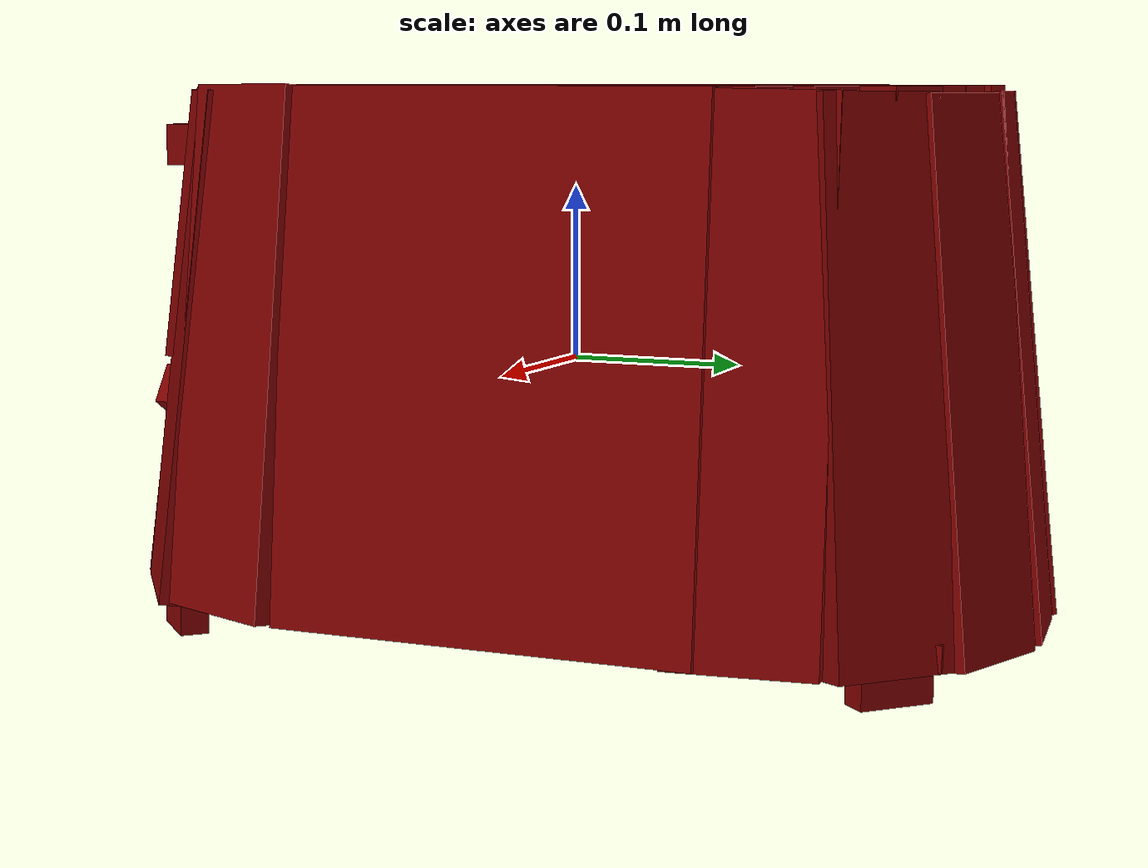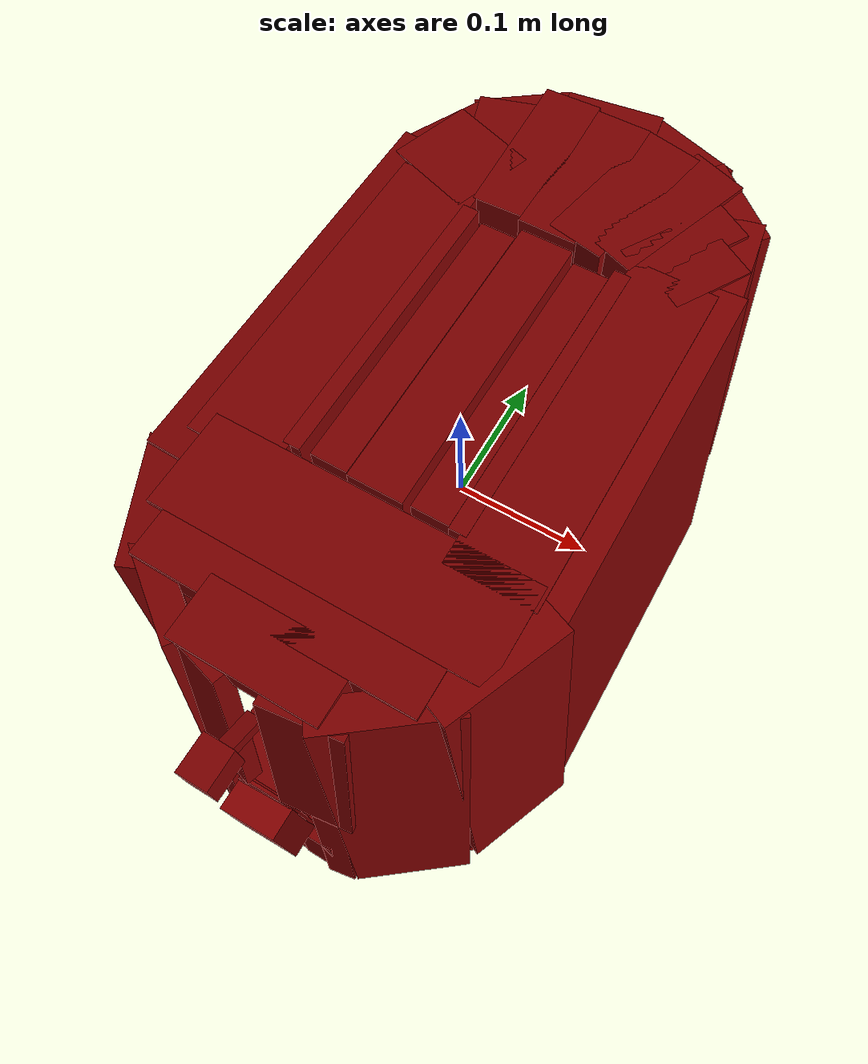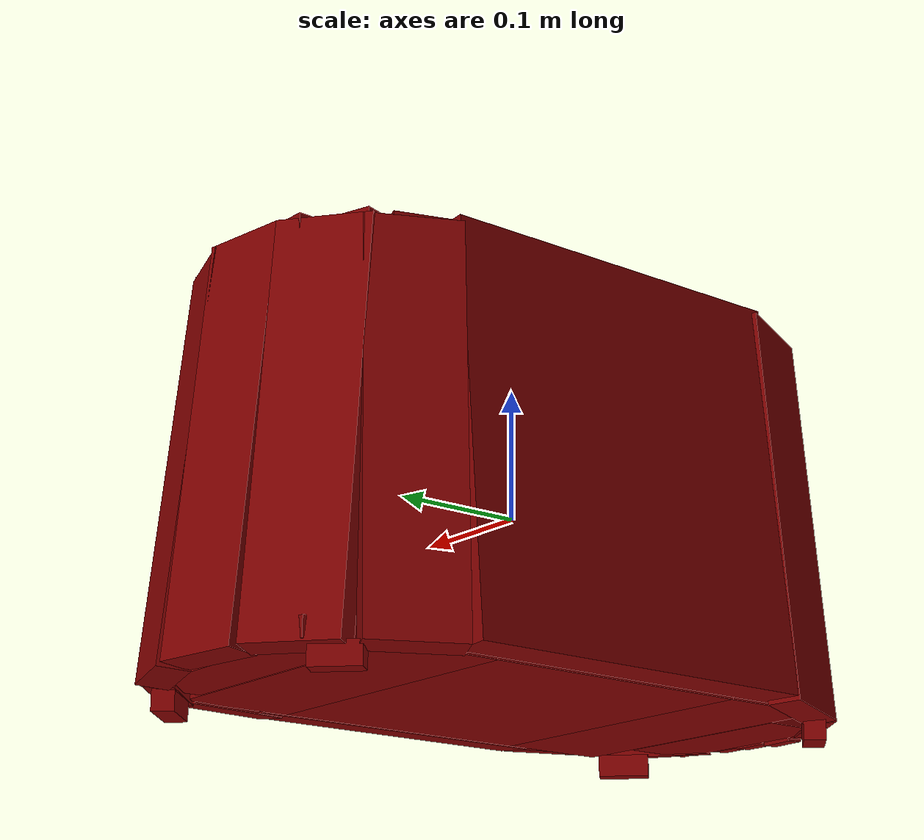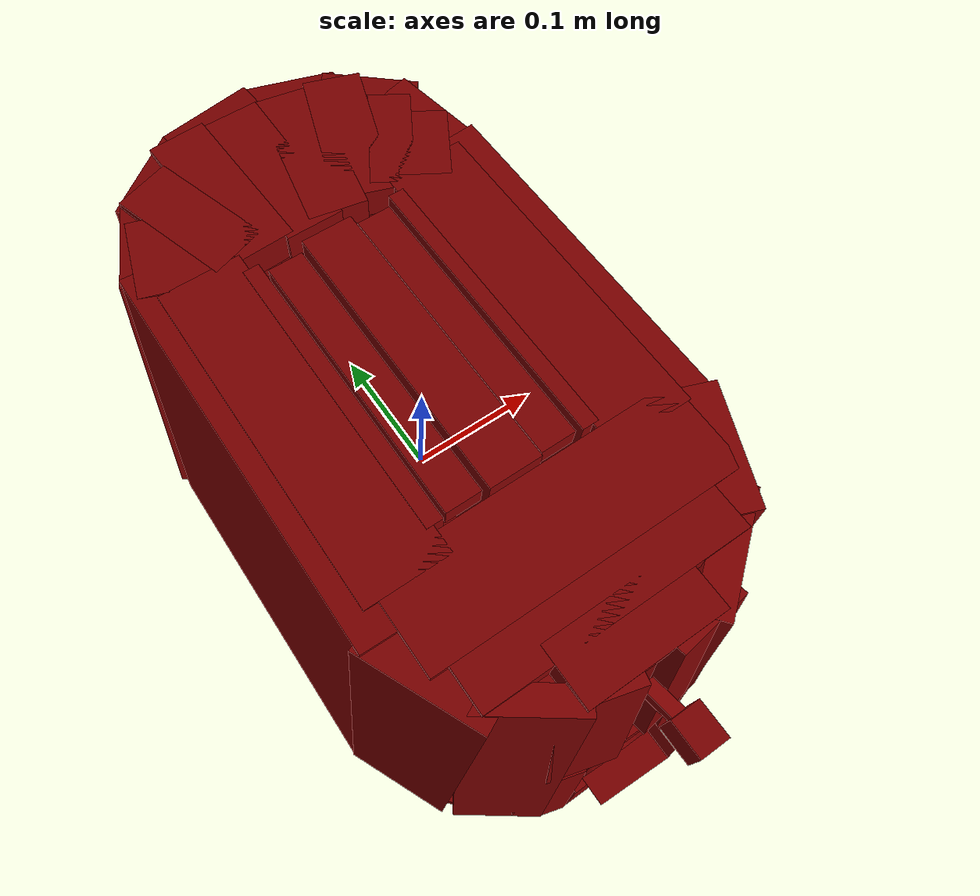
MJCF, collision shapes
<?xml version='1.0' encoding='UTF-8'?>
<mujoco model="model">
  <option timestep="0.002" gravity="0.0 0.0 -9.81"/>
  <compiler angle="radian"/>
  <asset>
    <mesh file="visuals/Body001.obj" name="Body001_vis"/>
    <mesh file="visuals/Button001.obj" name="Button001_vis"/>
    <mesh file="visuals/Knob001.obj" name="Knob001_vis"/>
    <mesh file="visuals/Lever001.obj" name="Lever001_vis"/>
    <texture file="visuals/T_BC001.png" name="Body001_material" type="2d"/>
    <material name="Body001_material" rgba="1 1 1 1.0" texture="Body001_material" shininess="0.1" specular="3"/>
    <texture file="visuals/T_BC001.png" name="Button001_material" type="2d"/>
    <material name="Button001_material" rgba="1 1 1 1.0" texture="Button001_material" shininess="0.1" specular="3"/>
    <texture file="visuals/T_BC001.png" name="Knob001_material" type="2d"/>
    <material name="Knob001_material" rgba="1 1 1 1.0" texture="Knob001_material" shininess="0.1" specular="3"/>
    <texture file="visuals/T_BC001.png" name="Lever001_material" type="2d"/>
    <material name="Lever001_material" rgba="1 1 1 1.0" texture="Lever001_material" shininess="0.1" specular="3"/>
  </asset>
  <default>
    <default class="visual">
      <geom conaffinity="0" contype="0" group="1" type="mesh"/>
    </default>
    <default class="collision">
      <geom group="0" rgba="0.5 0 0 0.5"/>
    </default>
    <default class="spawn">
      <geom group="0" rgba="1 1 1 0.5" contype="0" conaffinity="0"/>
      <site group="0" rgba="1 1 1 0.5"/>
    </default>
    <default class="region">
      <geom group="1" conaffinity="0" contype="0" rgba="0 1 0 0"/>
    </default>
  </default>
  <worldbody>
    <body>
      <body name="object">
        <geom mesh="Body001_vis" type="mesh" solimp="0.998 0.998 0.001" solref="0.001 1" friction="0.95 0.3 0.1" class="visual" material="Body001_material"/>
        <geom class="collision" type="box" pos="-0.12963955104351044 0.007897326722741127 0.008816624991595745" size="0.14144612848758698 0.01274540089070797 0.14901943504810333" quat="0.7064355611801147 -0.03080456703901291 0.030804511159658432 -0.7064353823661804" density="1000.0"/>
        <geom class="collision" type="box" pos="0.12716460227966309 0.007897359319031239 0.008262507617473602" size="0.12422096729278564 0.015895145013928413 0.14901944994926453" quat="0.7064338326454163 0.03084356151521206 -0.03084355592727661 -0.7064337134361267" density="1000.0"/>
        <geom class="collision" type="box" pos="0.00011969677871093154 0.007897347211837769 0.10804837942123413" size="0.01845981739461422 0.10339897125959396 0.05032327026128769" quat="1.0 0.0 0.0 0.0" density="1000.0"/>
        <geom class="collision" type="box" pos="-0.000523637980222702 0.006352682132273912 -0.1334735006093979" size="0.12363296747207642 0.10683106631040573 0.007478775456547737" quat="1.0 0.0 0.0 0.0" density="1000.0"/>
        <geom class="collision" type="box" pos="-0.055895086377859116 0.007897336035966873 0.10804837942123413" size="0.005722363479435444 0.10339897871017456 0.05032327026128769" quat="1.0 0.0 0.0 0.0" density="1000.0"/>
        <geom class="collision" type="box" pos="0.05375785753130913 0.00789735745638609 0.10804837942123413" size="0.005722363479435444 0.10339897871017456 0.05032327026128769" quat="1.0 0.0 0.0 0.0" density="1000.0"/>
        <geom class="collision" type="box" pos="0.08441834151744843 0.004921078681945801 0.14686915278434753" size="0.029067162424325943 0.11973752081394196 0.01123098749667406" quat="1.0 0.0 0.0 0.0" density="1000.0"/>
        <geom class="collision" type="box" pos="-0.0005236087017692626 -0.14244481921195984 -0.1334735006093979" size="0.1236327588558197 0.04326910525560379 0.007478821091353893" quat="1.0 0.0 0.0 0.0" density="1000.0"/>
        <geom class="collision" type="box" pos="-0.0005236667348071933 0.15569737553596497 -0.1334735006093979" size="0.12363278120756149 0.04326910525560379 0.007478823885321617" quat="1.0 0.0 0.0 0.0" density="1000.0"/>
        <geom class="collision" type="box" pos="-0.00052368373144418 0.22390928864479065 -0.1334735006093979" size="0.09864763170480728 0.023213988170027733 0.0074788425117731094" quat="1.0 0.0 0.0 0.0" density="1000.0"/>
        <geom class="collision" type="box" pos="-0.0005235945573076606 -0.2149922102689743 -0.1334735006093979" size="0.07698934525251389 0.027825381606817245 0.0074788425117731094" quat="1.0 0.0 0.0 0.0" density="1000.0"/>
        <geom class="collision" type="box" pos="-4.070968134328723e-05 0.007897347211837769 0.048795536160469055" size="0.04790610074996948 0.10339908301830292 0.0074788425117731094" quat="1.0 0.0 0.0 0.0" density="1000.0"/>
        <geom class="collision" type="box" pos="0.12461941689252853 0.15298110246658325 0.007260147947818041" size="0.04173025116324425 0.011884286068379879 0.14901944994926453" quat="0.7600298523902893 0.028310729190707207 -0.03318358585238457 -0.6484227180480957" density="1000.0"/>
        <geom class="collision" type="box" pos="0.09906192123889923 0.21119697391986847 0.006132931914180517" size="0.03452734649181366 0.011884287931025028 0.14901944994926453" quat="0.9342952370643616 0.040630511939525604 -0.019244840368628502 -0.35365405678749084" density="1000.0"/>
        <geom class="collision" type="box" pos="0.047534357756376266 0.24385422468185425 0.00491397175937891" size="0.03452734649181366 0.011884288862347603 0.14901944994926453" quat="0.9861531853675842 0.045964132994413376 -0.010331107303500175 -0.15900461375713348" density="1000.0"/>
        <geom class="collision" type="box" pos="-0.016003601253032684 0.2503935992717743 0.005676752422004938" size="0.03452735021710396 0.011884287931025028 0.14901944994926453" quat="0.9965984225273132 0.04677310585975647 0.00046638937783427536 0.06784994900226593" density="1000.0"/>
        <geom class="collision" type="box" pos="-0.07770566642284393 0.22856509685516357 0.004657683428376913" size="0.03452734649181366 0.011884286068379879 0.14901944994926453" quat="0.9517301321029663 0.05032274127006531 0.006126889027655125 0.30272069573402405" density="1000.0"/>
        <geom class="collision" type="box" pos="-0.11924850940704346 0.1794234961271286 0.0039405496791005135" size="0.03452734649181366 0.011884287931025028 0.14901944994926453" quat="0.8476083874702454 0.04295797646045685 0.026764579117298126 0.5282028913497925" density="1000.0"/>
        <geom class="collision" type="box" pos="0.1206316351890564 -0.1521981954574585 0.009338139556348324" size="0.04173024743795395 0.011884286068379879 0.14901944994926453" quat="0.5522377490997314 0.029308753088116646 -0.037714868783950806 -0.8323172926902771" density="1000.0"/>
        <geom class="collision" type="box" pos="0.07901226729154587 -0.21047024428844452 0.006999923847615719" size="0.04173025116324425 0.010432533919811249 0.14901944994926453" quat="0.3188709020614624 0.011297330260276794 -0.05592277646064758 -0.9460794925689697" density="1000.0"/>
        <geom class="collision" type="box" pos="-0.07575346529483795 -0.21429777145385742 0.00590201560407877" size="0.034751467406749725 0.009053592570126057 0.14901944994926453" quat="0.30279412865638733 0.0040574343875050545 0.053809989243745804 0.9515270590782166" density="1000.0"/>
        <geom class="collision" type="box" pos="-0.11616259813308716 -0.16392947733402252 0.00539203779771924" size="0.04173025116324425 0.011884286068379879 0.14901944994926453" quat="0.537534773349762 0.027018805965781212 0.03096226043999195 0.8422396779060364" density="1000.0"/>
        <geom class="collision" type="box" pos="-0.023751314729452133 -0.25128477811813354 -0.10905498266220093" size="0.01302685122936964 0.007193822413682938 0.033476803451776505" quat="0.999358594417572 -0.03437196463346481 0.010040857829153538 -0.00034534241422079504" density="1000.0"/>
        <geom class="collision" type="box" pos="0.03623589128255844 -0.2297016829252243 0.07535795122385025" size="0.025410935282707214 0.005940436851233244 0.08041711896657944" quat="0.9952823519706726 -0.07028599828481674 0.004711257293820381 0.06671405583620071" density="1000.0"/>
        <geom class="collision" type="box" pos="-0.035265568643808365 -0.22817851603031158 0.07372958958148956" size="0.025410933420062065 0.005940437316894531 0.08041712641716003" quat="0.9888200759887695 -0.069829560816288 -0.009281082078814507 -0.13142527639865875" density="1000.0"/>
        <geom class="collision" type="box" pos="-0.04518352448940277 -0.24568241834640503 -0.0725383386015892" size="0.010348370298743248 0.00594043405726552 0.06792284548282623" quat="0.9895538091659546 -0.05383039265871048 0.012083004228770733 -0.13318996131420135" density="1000.0"/>
        <geom class="collision" type="box" pos="0.04543179273605347 -0.24779660999774933 -0.07208830118179321" size="0.010348370298743248 0.005940435919910669 0.06673044711351395" quat="0.994620144367218 -0.06181458756327629 -0.01368619967252016 0.08198999613523483" density="1000.0"/>
        <geom class="collision" type="box" pos="-0.004058614373207092 0.17586804926395416 0.14686915278434753" size="0.020533079281449318 0.0576057992875576 0.01123098749667406" quat="1.0 0.0 0.0 0.0" density="1000.0"/>
        <geom class="collision" type="box" pos="-0.08600640296936035 0.004921078681945801 0.14686915278434753" size="0.029067162424325943 0.11973752081394196 0.01123098749667406" quat="1.0 0.0 0.0 0.0" density="1000.0"/>
        <geom class="collision" type="box" pos="0.025803158059716225 0.17463064193725586 0.14686915278434753" size="0.020533079281449318 0.05546017736196518 0.01123098749667406" quat="0.99519282579422 0.0 -0.0 -0.09793465584516525" density="1000.0"/>
        <geom class="collision" type="box" pos="0.054405078291893005 0.17284820973873138 0.14686915278434753" size="0.020533079281449318 0.05365860462188721 0.01123098749667406" quat="0.985664427280426 0.0 -0.0 -0.16871750354766846" density="1000.0"/>
        <geom class="collision" type="box" pos="0.07746127247810364 0.15380196273326874 0.14686915278434753" size="0.015054470859467983 0.03940611332654953 0.01123098749667406" quat="0.9634147882461548 0.0 -0.0 -0.2680148482322693" density="1000.0"/>
        <geom class="collision" type="box" pos="0.09362757951021194 0.1376771181821823 0.14686915278434753" size="0.017706092447042465 0.02816912531852722 0.01123098749667406" quat="0.9634147882461548 0.0 -0.0 -0.2680148482322693" density="1000.0"/>
        <geom class="collision" type="box" pos="-0.041663914918899536 0.17837506532669067 0.14686915278434753" size="0.020533079281449318 0.0576057992875576 0.01123098749667406" quat="0.9997580647468567 0.0 0.0 0.021995650604367256" density="1000.0"/>
        <geom class="collision" type="box" pos="-0.06914722919464111 0.16909322142601013 0.14686915278434753" size="0.020533079281449318 0.04429369792342186 0.01123098749667406" quat="0.9881181120872498 0.0 0.0 0.15369655191898346" density="1000.0"/>
        <geom class="collision" type="box" pos="-0.08559207618236542 0.14887502789497375 0.14686915278434753" size="0.030398854985833168 0.032412976026535034 0.01123098749667406" quat="0.8110179305076599 0.0 0.0 0.5850213170051575" density="1000.0"/>
        <geom class="collision" type="box" pos="0.0028177741914987564 -0.1314210444688797 0.14686915278434753" size="0.10841242223978043 0.03248751536011696 0.01123098749667406" quat="1.0 0.0 0.0 0.0" density="1000.0"/>
        <geom class="collision" type="box" pos="-0.00035795336589217186 -0.20149824023246765 0.14686915278434753" size="0.047777652740478516 0.020394697785377502 0.01123098749667406" quat="1.0 0.0 0.0 0.0" density="1000.0"/>
        <geom class="collision" type="box" pos="-0.003025983925908804 -0.17204056680202484 0.14686915278434753" size="0.09098364412784576 0.02183944173157215 0.01123098749667406" quat="1.0 0.0 0.0 0.0" density="1000.0"/>
        <geom class="collision" type="box" pos="0.03048180602490902 -0.25077319145202637 -0.10684855282306671" size="0.01302685122936964 0.007193822413682938 0.033476803451776505" quat="0.9994068145751953 -0.034373484551906586 0.0021147695370018482 -7.273506344063208e-05" density="1000.0"/>
        <geom class="collision" type="box" pos="0.0032978937961161137 -0.2507743537425995 -0.12191110104322433" size="0.013768055476248264 0.007193821016699076 0.019472084939479828" quat="0.9994068145751953 -0.034373484551906586 0.0021147695370018482 -7.273506344063208e-05" density="1000.0"/>
        <geom class="collision" type="box" pos="-0.10197953879833221 -0.20589032769203186 -0.14933322370052338" size="0.00821390375494957 0.0178651325404644 0.008573487401008606" quat="0.9225467443466187 0.0 0.0 0.38588541746139526" density="1000.0"/>
        <geom class="collision" type="box" pos="0.10498157143592834 -0.20311105251312256 -0.14933322370052338" size="0.008213902823626995 0.019728634506464005 0.008573487401008606" quat="0.9253305792808533 0.0 -0.0 -0.37916135787963867" density="1000.0"/>
        <geom class="collision" type="box" pos="-0.10261019319295883 0.22309903800487518 -0.14933322370052338" size="0.00821390375494957 0.0178651325404644 0.008573487401008606" quat="0.9230363965034485 0.0 -0.0 -0.38471266627311707" density="1000.0"/>
        <geom class="collision" type="box" pos="0.10355649888515472 0.22131294012069702 -0.14933322370052338" size="0.008213902823626995 0.02138938196003437 0.008573487401008606" quat="0.39746493101119995 0.0 -0.0 -0.9176173806190491" density="1000.0"/>
        <body name="Button001">
          <joint axis="0.0 1.0 0.0" pos="0.003784051164984703 -0.25243592262268066 -0.09274370968341827" limited="true" name="Button001_joint" range="0.0 0.003" type="slide" damping="1" frictionloss="1" armature=".01" stiffness="0.05"/>
          <geom mesh="Button001_vis" type="mesh" solimp="0.998 0.998 0.001" solref="0.001 1" friction="0.95 0.3 0.1" class="visual" material="Button001_material"/>
          <geom class="collision" type="box" pos="0.003770334180444479 -0.2532886862754822 -0.09290443360805511" size="0.011674778535962105 0.006302380468696356 0.001900609815493226" quat="0.7071068286895752 0.7071067690849304 0.0 0.0" density="1000.0"/>
        </body>
        <body name="Knob001">
          <joint axis="0.0 1.0 0.0" pos="0.0007637711241841316 -0.25170308351516724 -0.0427960604429245" limited="true" name="Knob001_joint" range="0.0 4.241150082346221" type="hinge" damping="0.05" armature="0.001" springref="-0.01"/>
          <geom mesh="Knob001_vis" type="mesh" solimp="0.998 0.998 0.001" solref="0.001 1" friction="0.95 0.3 0.1" class="visual" material="Knob001_material"/>
          <geom class="collision" type="cylinder" pos="0.0008106277091428638 -0.24853865802288055 -0.04275788739323616" size="0.030964963138103485 0.0012452210066840053" quat="0.5000000596046448 -0.5 -0.5 -0.4999999701976776" density="1000.0"/>
          <geom class="collision" type="box" pos="0.0005925667937844992 -0.2603427469730377 -0.04196534678339958" size="0.029718758538365364 0.010985721834003925 0.012968876399099827" quat="0.9604214429855347 0.0 -0.27855104207992554 0.0" density="1000.0"/>
        </body>
        <body name="Lever001">
          <joint axis="0.0 -0.148948535323143 -0.9888449907302856" pos="0.0006386404857039452 -0.24778863787651062 0.11701012402772903" limited="true" name="Lever001_joint" range="0.0 0.09" type="slide" damping="1" frictionloss="1" armature=".01" stiffness="1" springref="-3"/>
          <geom mesh="Lever001_vis" type="mesh" solimp="0.998 0.998 0.001" solref="0.001 1" friction="0.95 0.3 0.1" class="visual" material="Lever001_material"/>
          <geom class="collision" type="box" pos="0.0009263642132282257 -0.26105016469955444 0.12115998566150665" size="0.01020761951804161 0.012192849069833755 0.012658700346946716" quat="1.0 0.0 0.0 0.0" name="lever_knob" density="1000.0"/>
          <geom class="collision" type="box" pos="0.0009263642132282257 -0.24065491557121277 0.11184914410114288" size="0.004578250925987959 0.004855124745517969 0.014432530850172043" quat="0.6074435114860535 0.36195623874664307 0.3619561195373535 -0.6074436902999878" density="1000.0"/>
          <geom class="collision" type="box" pos="0.03391259163618088 0.00789735373109579 0.1450502574443817" size="0.012546599842607975 0.09999998658895493 0.0074788425117731094" quat="1.0 0.0 0.0 0.0" name="slotR_floor" density="1000.0"/>
          <geom class="collision" type="box" pos="-0.03356905281543732 0.007897340692579746 0.1450502574443817" size="0.0125465989112854 0.09999999403953552 0.0074788425117731094" quat="1.0 0.0 0.0 0.0" name="slotL_floor" density="1000.0"/>
        </body>
        <geom class="region" name="reg_main" type="box" pos="0.0 0.008688300848007202 -5.960464477539063e-08" size="0.15123122930526733 0.26494675874710083 0.15786179900169373"/>
      </body>
    </body>
  </worldbody>
  <actuator>
    <motor name="Button001_joint_actuator" joint="Button001_joint" gear="0.5"/>
    <motor name="Knob001_joint_actuator" joint="Knob001_joint" gear="0.5"/>
    <motor name="Lever001_joint_actuator" joint="Lever001_joint" gear="0.5"/>
  </actuator>
</mujoco>
